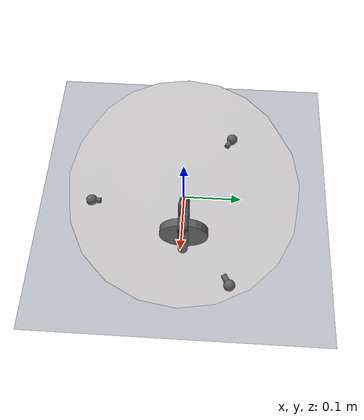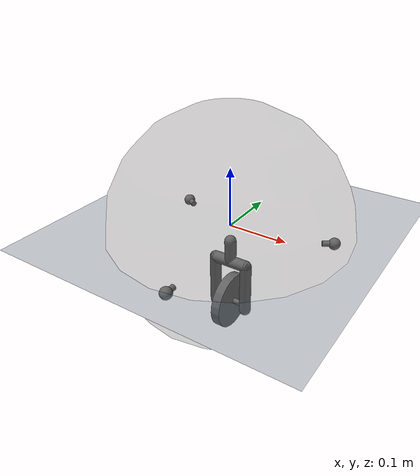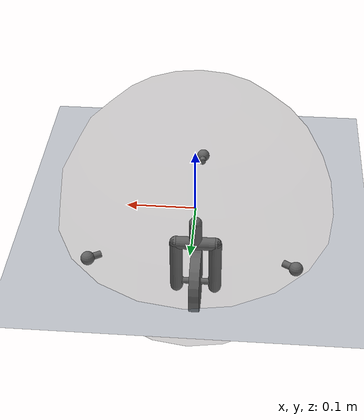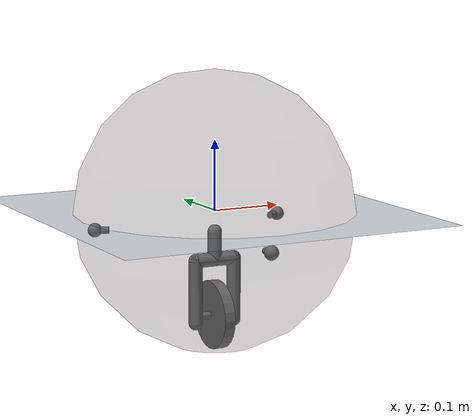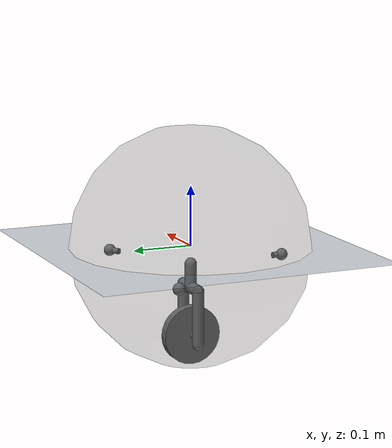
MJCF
<?xml version="1.0"?>
<mujoco model="sphere_robot">
    <option integrator="RK4"/>
    <option timestep="0.005" iterations="50" solver="Newton" tolerance="1e-10"/>
    <size njmax="1500" nconmax="5000" nstack="5000000"/>

    <asset>
        <texture type="skybox" builtin="gradient" rgb1="0.3 0.5 0.7" rgb2="0 0 0" width="512" height="512"/>
        <texture name="texplane" type="2d" builtin="checker" rgb1=".2 .3 .4" rgb2=".1 0.15 0.2" width="512" height="512" mark="cross" markrgb=".8 .8 .8"/>
        <texture name="texgeom" type="cube" builtin="flat" mark="cross" width="127" height="1278"
            rgb1="0.8 0.6 0.4" rgb2="0.8 0.6 0.4" markrgb="1 1 1" random="0.01"/>
        <material name="matplane" reflectance="0.3" texture="texplane" texrepeat="1 1" texuniform="true"/>
        <material name="matgeom" texture="texgeom" texuniform="true" rgba="0.8 0.6 .4 1"/>
    </asset>

    <visual>
        <map force="0.1" zfar="30"/>
        <rgba haze="0.15 0.25 0.35 1"/>
        <quality shadowsize="2048"/>
        <global offwidth="800" offheight="800"/>
    </visual>

    <worldbody>
        <geom name="floor" pos="0 0 0" size="0 0 .25" type="plane" material="matplane" condim="3"/>

        <light pos="0 0 6"/>
        <light directional="false" diffuse=".2 .2 .2" specular="0 0 0" pos="0 0 5" dir="0 0 -1" castshadow="false"/>

        <body name="shell" pos="0 0 0">
            <freejoint/>
            <geom name="sphere_shell" type="sphere" pos="0 0 0" size=".2 .19" rgba=".0 .0 .0 .2" mass="0.3" group="1"/>

            <body name="wheel">
                 <joint name="wheel_with_shell" type="ball"/>
                 <geom name="wheel_" type="cylinder" fromto="-0.008 0 -0.15  0.008 0 -0.15" size="0.049 0.005" mass="0.7"/>
                 <geom name="wheel_axis1" type="cylinder" fromto="-0.03 0 -0.15  -0.008 0 -0.15" size="0.005" mass="0.005"/>
                 <geom name="wheel_axis2" type="cylinder" fromto="0.008 0 -0.15  0.03 0 -0.15" size="0.005" mass="0.005"/>

                <body name="fork">
                    <joint name="fork_with_wheel" type="hinge" axis="1 0 0"/>
                    <geom name="fork1" type="capsule" fromto="-0.03 0 -0.07  -0.03 0 -0.16" size="0.01" mass="0.01" group="1"/>
                    <geom name="fork2" type="capsule" fromto="0.03 0 -0.07  0.03 0 -0.16" size="0.01" mass="0.01" group="1"/>
                    <geom name="link_f1_f2" type="capsule" fromto="-0.03 0 -0.07   0.03 0 -0.07" size="0.01" mass="0.001" group="1"/>
                    <geom name="fork0" type="capsule" fromto="0 0 -0.03  0 0 -0.07" size="0.01" mass="0.1" group="0.01"/>

                    <body name="platform">
                        <joint name="platform_with_fork" type="hinge" axis="0 0 1"/>
                        <geom name="platform" type="cylinder" pos="0 0 -0.03" size=".15 .005" rgba=".0 .0 .3 .5" mass="2" group="1"/>
                        <!-- some little mass for free vibration-->
                     </body>
                </body>

            </body>

            <body name="bearing1">
                <joint name="b1_with_shell" type="ball"/>
                <geom name="bearing1_" pos="0      -0.167 -0.03" size="0.01" mass="0.9"/>
                <geom name="line1" type="cylinder" fromto="0       -0.15 -0.03    0     -0.167 -0.03" size="0.005"/>
            </body>

            <body name="bearing2">
                <joint name="b2_with_shell" type="ball"/>
                <geom name="bearing2_" pos="0.1472  0.085 -0.03" size="0.01" mass="0.9"/>
                <geom name="line2" type="cylinder" fromto="0.1299  0.075 -0.03    0.1472 0.085 -0.03" size="0.005"/>
            </body>

            <body name="bearing3">
                <joint name="b3_with_shell" type="ball"/>
                <geom name="bearing3_" pos="-0.1472 0.085 -0.03" size="0.01" mass="0.9"/>
                <geom name="line3" type="cylinder" fromto="-0.1299 0.075 -0.03   -0.1472 0.085 -0.03" size="0.005"/>
            </body>
        </body>

    </worldbody>

    <equality>
        <!-- connect between bearings and platform -->
        <connect anchor="0       -0.15 -0.03" body1="bearing1" body2="platform" name="1"/>
        <connect anchor="0.1299  0.075 -0.03" body1="bearing2" body2="platform" name="2"/>
        <connect anchor="-0.1299 0.075 -0.03" body1="bearing3" body2="platform" name="3"/>

        <!-- connect between fork and wheel axis-->
        <connect anchor="-0.03 0 -0.15" body1="wheel" body2="fork"/>
        <connect anchor="0.03 0 -0.15" body1="wheel" body2="fork"/>

    </equality>

    <contact>
        <!-- friction between bearings and shell -->
        <pair name="friction_b1" geom1="bearing1_" geom2="sphere_shell" condim="3" friction="0.001"/>
        <pair name="friction_b2" geom1="bearing2_" geom2="sphere_shell" condim="3" friction="0.001"/>
        <pair name="friction_b3" geom1="bearing3_" geom2="sphere_shell" condim="3" friction="0.001"/>

        <!-- friction between bearings and shell -->
        <pair name="friction_wheel" geom1="wheel_" geom2="sphere_shell" condim="3" friction="0.01"/>
    </contact>

    <actuator>
        <motor name="platform_with_fork" gear="5" joint="platform_with_fork"/>
        <motor name="wheel_motor" gear="2" joint="fork_with_wheel"/>
    </actuator>
</mujoco>
